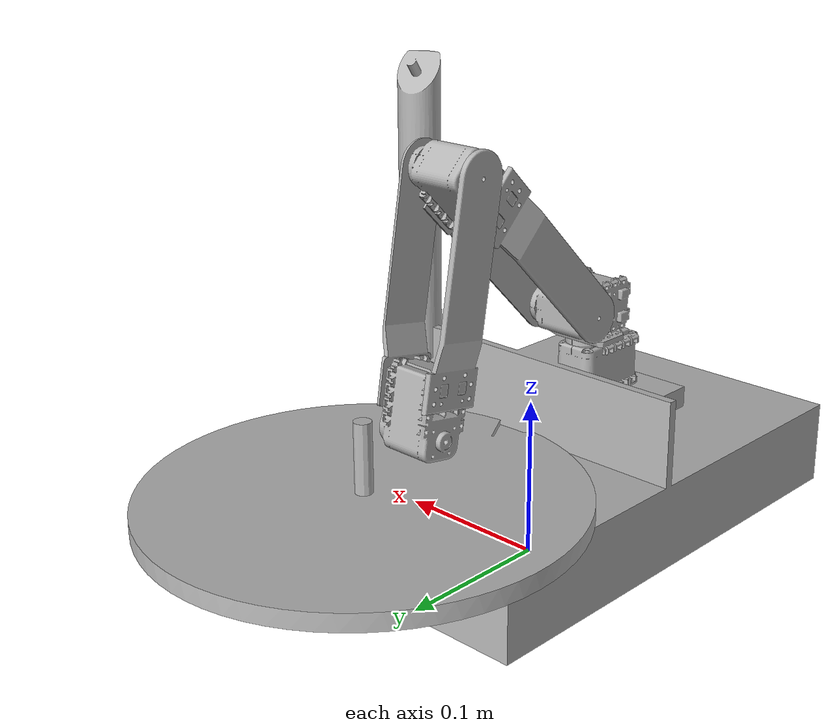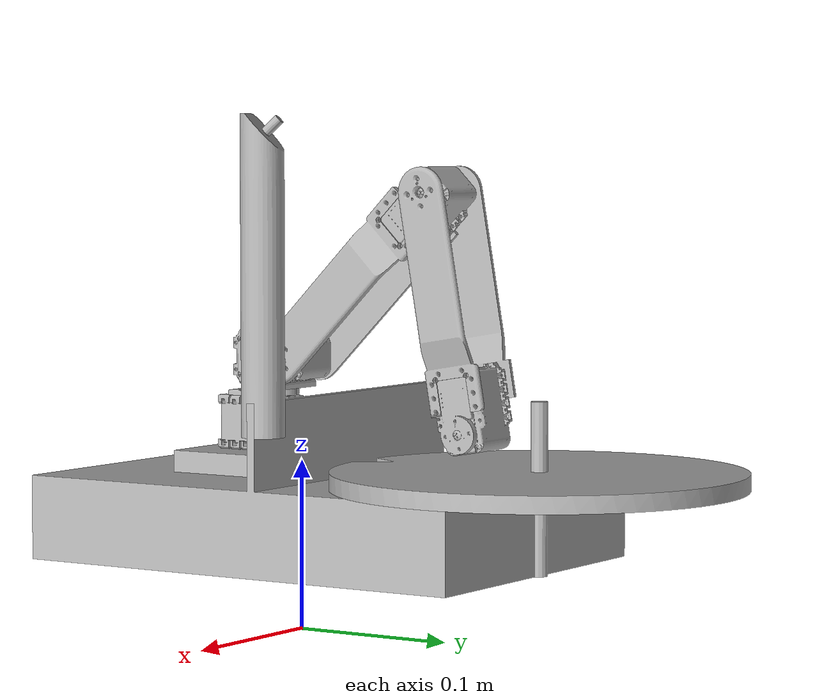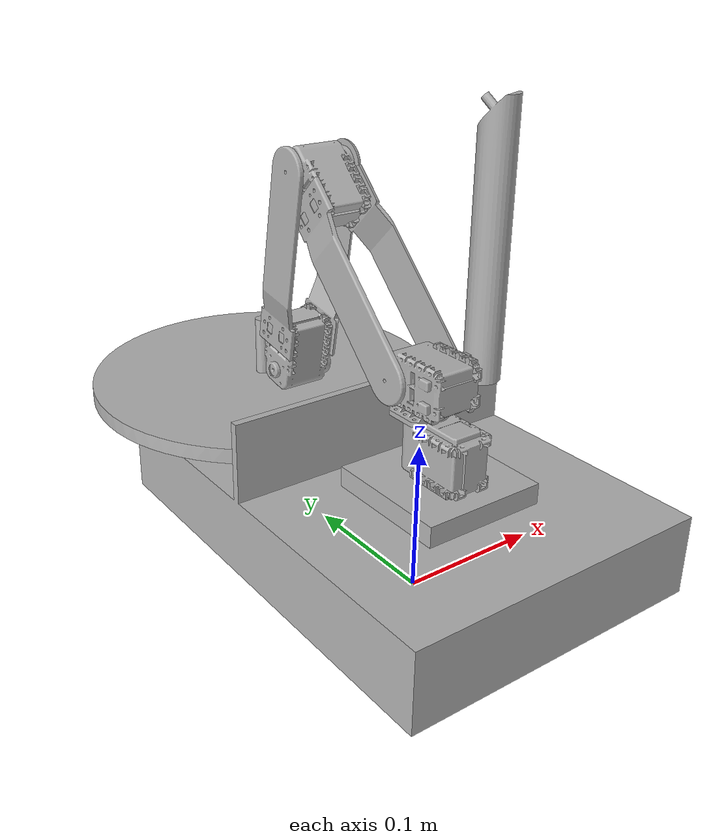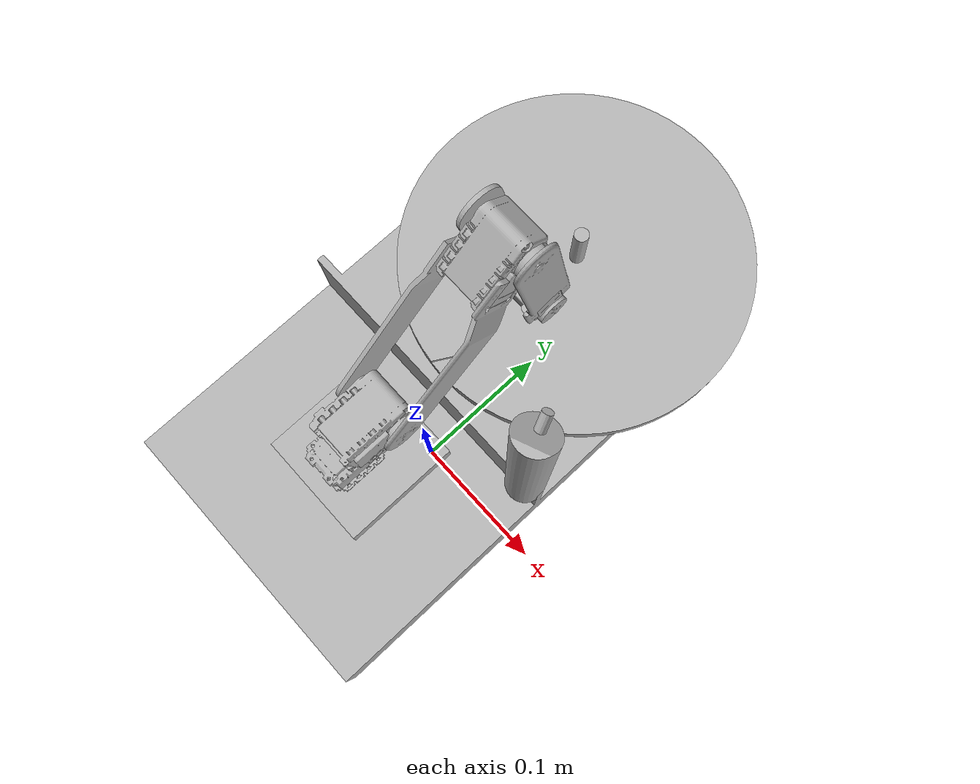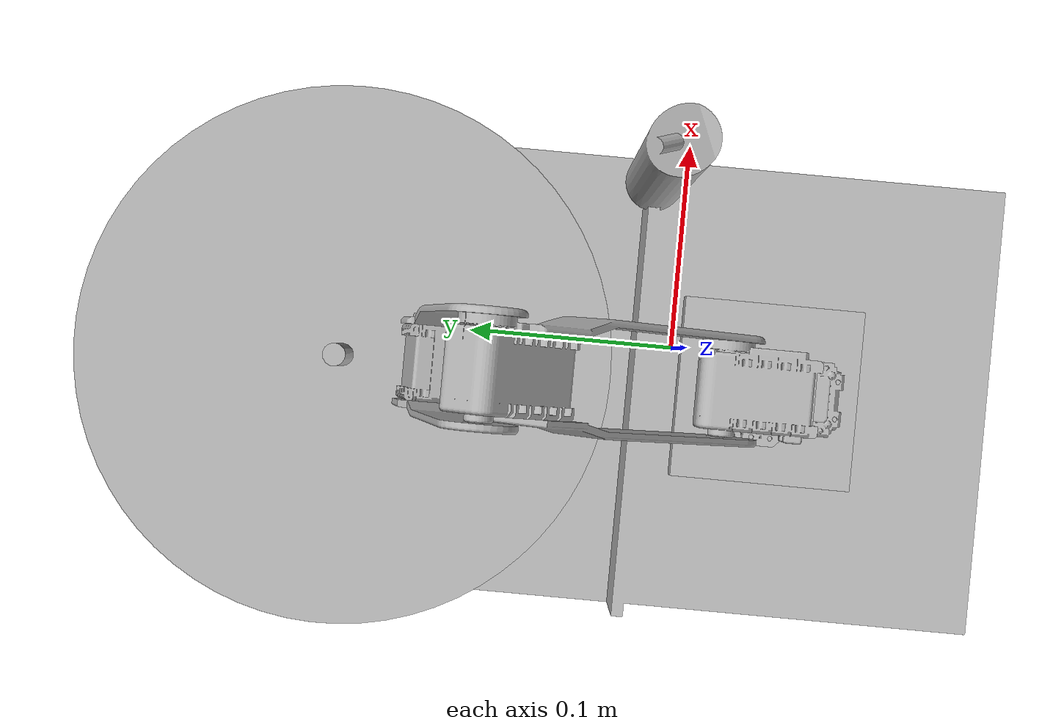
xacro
<?xml version="1.0" ?>
<robot name="stubbyV2" xmlns:xacro="http://www.ros.org/wiki/xacro">

<xacro:include filename="$(find stubbyV2_description)/urdf/materials.xacro" />
<xacro:include filename="$(find stubbyV2_description)/urdf/stubbyV2.trans" />
<xacro:include filename="$(find stubbyV2_description)/urdf/stubbyV2.gazebo" />
<link name="base_link">
  <inertial>
    <origin rpy="0 0 0" xyz="-0.017176095275408018 0.008329508235055823 0.06668562958812844"/>
    <mass value="2.9540424862254815"/>
    <inertia ixx="0.021201" ixy="0.0" ixz="-0.0" iyy="0.010579" iyz="-6.6e-05" izz="0.030285"/>
  </inertial>
  <visual>
    <origin rpy="0 0 0" xyz="0 0 0"/>
    <geometry>
      <mesh filename="package://stubbyV2_description/meshes/base_link.stl" scale="0.001 0.001 0.001"/>
    </geometry>
    <material name="silver"/>
  </visual>
  <collision>
    <origin rpy="0 0 0" xyz="0 0 0"/>
    <geometry>
      <mesh filename="package://stubbyV2_description/meshes/base_link.stl" scale="0.001 0.001 0.001"/>
    </geometry>
  </collision>
</link>

<link name="Component2_1">
  <inertial>
    <origin rpy="0 0 0" xyz="-3.213602704247101e-05 -1.2632577102433817e-09 0.0023374512159665684"/>
    <mass value="0.02417691266422109"/>
    <inertia ixx="1e-06" ixy="-0.0" ixz="-0.0" iyy="4e-06" iyz="-0.0" izz="5e-06"/>
  </inertial>
  <visual>
    <origin rpy="0 0 0" xyz="0.017176 0.027238 -0.140788"/>
    <geometry>
      <mesh filename="package://stubbyV2_description/meshes/Component2_1.stl" scale="0.001 0.001 0.001"/>
    </geometry>
    <material name="silver"/>
  </visual>
  <collision>
    <origin rpy="0 0 0" xyz="0.017176 0.027238 -0.140788"/>
    <geometry>
      <mesh filename="package://stubbyV2_description/meshes/Component2_1.stl" scale="0.001 0.001 0.001"/>
    </geometry>
  </collision>
</link>

<link name="Component3_1">
  <inertial>
    <origin rpy="0 0 0" xyz="-0.014941512536019635 0.001737720765778366 0.01353096997692041"/>
    <mass value="0.04244091097100989"/>
    <inertia ixx="1e-05" ixy="-0.0" ixz="-0.0" iyy="7e-06" iyz="0.0" izz="1.2e-05"/>
  </inertial>
  <visual>
    <origin rpy="0 0 0" xyz="0.001176 0.027238 -0.146288"/>
    <geometry>
      <mesh filename="package://stubbyV2_description/meshes/Component3_1.stl" scale="0.001 0.001 0.001"/>
    </geometry>
    <material name="silver"/>
  </visual>
  <collision>
    <origin rpy="0 0 0" xyz="0.001176 0.027238 -0.146288"/>
    <geometry>
      <mesh filename="package://stubbyV2_description/meshes/Component3_1.stl" scale="0.001 0.001 0.001"/>
    </geometry>
  </collision>
</link>

<link name="Component4_1">
  <inertial>
    <origin rpy="0 0 0" xyz="0.0005043653625993114 0.0542010520735141 8.771497575277287e-06"/>
    <mass value="0.0869111581488203"/>
    <inertia ixx="0.000129" ixy="4e-06" ixz="0.0" iyy="7e-06" iyz="-0.0" izz="0.000122"/>
  </inertial>
  <visual>
    <origin rpy="0 0 0" xyz="-0.003824 0.012738 -0.159788"/>
    <geometry>
      <mesh filename="package://stubbyV2_description/meshes/Component4_1.stl" scale="0.001 0.001 0.001"/>
    </geometry>
    <material name="silver"/>
  </visual>
  <collision>
    <origin rpy="0 0 0" xyz="-0.003824 0.012738 -0.159788"/>
    <geometry>
      <mesh filename="package://stubbyV2_description/meshes/Component4_1.stl" scale="0.001 0.001 0.001"/>
    </geometry>
  </collision>
</link>

<link name="Component5_1">
  <inertial>
    <origin rpy="0 0 0" xyz="-0.014941512536019191 0.01773772076577952 -0.013469030023073675"/>
    <mass value="0.04244091097100989"/>
    <inertia ixx="1e-05" ixy="-0.0" ixz="-0.0" iyy="7e-06" iyz="0.0" izz="1.2e-05"/>
  </inertial>
  <visual>
    <origin rpy="0 0 0" xyz="0.001176 -0.096762 -0.173288"/>
    <geometry>
      <mesh filename="package://stubbyV2_description/meshes/Component5_1.stl" scale="0.001 0.001 0.001"/>
    </geometry>
    <material name="silver"/>
  </visual>
  <collision>
    <origin rpy="0 0 0" xyz="0.001176 -0.096762 -0.173288"/>
    <geometry>
      <mesh filename="package://stubbyV2_description/meshes/Component5_1.stl" scale="0.001 0.001 0.001"/>
    </geometry>
  </collision>
</link>

<link name="Component6_1">
  <inertial>
    <origin rpy="0 0 0" xyz="0.00050436536259966 0.054201052073516026 8.77149758146678e-06"/>
    <mass value="0.0869111581488203"/>
    <inertia ixx="0.000129" ixy="4e-06" ixz="0.0" iyy="7e-06" iyz="-0.0" izz="0.000122"/>
  </inertial>
  <visual>
    <origin rpy="0 0 0" xyz="-0.003824 -0.127262 -0.159788"/>
    <geometry>
      <mesh filename="package://stubbyV2_description/meshes/Component6_1.stl" scale="0.001 0.001 0.001"/>
    </geometry>
    <material name="silver"/>
  </visual>
  <collision>
    <origin rpy="0 0 0" xyz="-0.003824 -0.127262 -0.159788"/>
    <geometry>
      <mesh filename="package://stubbyV2_description/meshes/Component6_1.stl" scale="0.001 0.001 0.001"/>
    </geometry>
  </collision>
</link>

<link name="Component9_1">
  <inertial>
    <origin rpy="0 0 0" xyz="-0.014941512536018366 0.0017377207657783278 -0.013469030023068429"/>
    <mass value="0.04244091097100989"/>
    <inertia ixx="1e-05" ixy="-0.0" ixz="-0.0" iyy="7e-06" iyz="0.0" izz="1.2e-05"/>
  </inertial>
  <visual>
    <origin rpy="0 0 0" xyz="0.001176 -0.252762 -0.173288"/>
    <geometry>
      <mesh filename="package://stubbyV2_description/meshes/Component9_1.stl" scale="0.001 0.001 0.001"/>
    </geometry>
    <material name="silver"/>
  </visual>
  <collision>
    <origin rpy="0 0 0" xyz="0.001176 -0.252762 -0.173288"/>
    <geometry>
      <mesh filename="package://stubbyV2_description/meshes/Component9_1.stl" scale="0.001 0.001 0.001"/>
    </geometry>
  </collision>
</link>

<link name="Component10_1">
  <inertial>
    <origin rpy="0 0 0" xyz="-2.7018171657629264e-06 4.189190058526138e-05 0.006457139430295453"/>
    <mass value="0.6475846843052765"/>
    <inertia ixx="0.000356" ixy="-0.0" ixz="0.0" iyy="0.000357" iyz="-0.0" izz="0.000695"/>
  </inertial>
  <visual>
    <origin rpy="0 0 0" xyz="0.017176 0.037238 -0.090788"/>
    <geometry>
      <mesh filename="package://stubbyV2_description/meshes/Component10_1.stl" scale="0.001 0.001 0.001"/>
    </geometry>
    <material name="silver"/>
  </visual>
  <collision>
    <origin rpy="0 0 0" xyz="0.017176 0.037238 -0.090788"/>
    <geometry>
      <mesh filename="package://stubbyV2_description/meshes/Component10_1.stl" scale="0.001 0.001 0.001"/>
    </geometry>
  </collision>
</link>

<link name="Component1_1">
  <inertial>
    <origin rpy="0 0 0" xyz="-3.118766107211568e-05 -0.012762279234219853 0.017058460330645522"/>
    <mass value="0.04244091097100989"/>
    <inertia ixx="1.2e-05" ixy="-0.0" ixz="0.0" iyy="7e-06" iyz="-0.0" izz="1e-05"/>
  </inertial>
  <visual>
    <origin rpy="0 0 0" xyz="0.017176 0.027238 -0.103788"/>
    <geometry>
      <mesh filename="package://stubbyV2_description/meshes/Component1_1.stl" scale="0.001 0.001 0.001"/>
    </geometry>
    <material name="silver"/>
  </visual>
  <collision>
    <origin rpy="0 0 0" xyz="0.017176 0.027238 -0.103788"/>
    <geometry>
      <mesh filename="package://stubbyV2_description/meshes/Component1_1.stl" scale="0.001 0.001 0.001"/>
    </geometry>
  </collision>
</link>

<link name="platform1_1">
  <inertial>
    <origin rpy="0 0 0" xyz="-9.527540957565694e-08 0.00020213084120049296 0.004993590637135198"/>
    <mass value="0.4507941946898463"/>
    <inertia ixx="0.001622" ixy="-0.0" ixz="-0.0" iyy="0.001632" iyz="-0.0" izz="0.003247"/>
  </inertial>
  <visual>
    <origin rpy="0 0 0" xyz="0.017176 -0.152762 -0.090788"/>
    <geometry>
      <mesh filename="package://stubbyV2_description/meshes/platform1_1.stl" scale="0.001 0.001 0.001"/>
    </geometry>
    <material name="silver"/>
  </visual>
  <collision>
    <origin rpy="0 0 0" xyz="0.017176 -0.152762 -0.090788"/>
    <geometry>
      <mesh filename="package://stubbyV2_description/meshes/platform1_1.stl" scale="0.001 0.001 0.001"/>
    </geometry>
  </collision>
</link>

<link name="susMount1_1">
  <inertial>
    <origin rpy="0 0 0" xyz="-0.0952469331263506 0.3003013551815146 0.09758296046799113"/>
    <mass value="0.6557743433400158"/>
    <inertia ixx="0.001646" ixy="-0.0" ixz="-4e-06" iyy="0.001645" iyz="1e-05" izz="5.2e-05"/>
  </inertial>
  <visual>
    <origin rpy="0 0 0" xyz="-0.165648 0.278026 -0.11325"/>
    <geometry>
      <mesh filename="package://stubbyV2_description/meshes/susMount1_1.stl" scale="0.001 0.001 0.001"/>
    </geometry>
    <material name="silver"/>
  </visual>
  <collision>
    <origin rpy="0 0 0" xyz="-0.165648 0.278026 -0.11325"/>
    <geometry>
      <mesh filename="package://stubbyV2_description/meshes/susMount1_1.stl" scale="0.001 0.001 0.001"/>
    </geometry>
  </collision>
</link>

<link name="Component7_1">
  <inertial>
    <origin rpy="0 0 0" xyz="-0.0038824317095737595 -0.061571163439828484 -0.013400530593801835"/>
    <mass value="0.09556389824775209"/>
    <inertia ixx="0.000154" ixy="-3e-06" ixz="-0.0" iyy="8e-06" iyz="-1e-06" izz="0.000147"/>
  </inertial>
  <visual>
    <origin rpy="0 0 0" xyz="0.033176 -0.104762 -0.173288"/>
    <geometry>
      <mesh filename="package://stubbyV2_description/meshes/Component7_1.stl" scale="0.001 0.001 0.001"/>
    </geometry>
    <material name="silver"/>
  </visual>
  <collision>
    <origin rpy="0 0 0" xyz="0.033176 -0.104762 -0.173288"/>
    <geometry>
      <mesh filename="package://stubbyV2_description/meshes/Component7_1.stl" scale="0.001 0.001 0.001"/>
    </geometry>
  </collision>
</link>

<link name="Component8_1">
  <inertial>
    <origin rpy="0 0 0" xyz="-0.003882431709572934 -0.061571163439830434 -0.013400530593796256"/>
    <mass value="0.09556389824775206"/>
    <inertia ixx="0.000154" ixy="-3e-06" ixz="-0.0" iyy="8e-06" iyz="-1e-06" izz="0.000147"/>
  </inertial>
  <visual>
    <origin rpy="0 0 0" xyz="0.033176 -0.244762 -0.173288"/>
    <geometry>
      <mesh filename="package://stubbyV2_description/meshes/Component8_1.stl" scale="0.001 0.001 0.001"/>
    </geometry>
    <material name="silver"/>
  </visual>
  <collision>
    <origin rpy="0 0 0" xyz="0.033176 -0.244762 -0.173288"/>
    <geometry>
      <mesh filename="package://stubbyV2_description/meshes/Component8_1.stl" scale="0.001 0.001 0.001"/>
    </geometry>
  </collision>
</link>

<joint name="Rev1" type="continuous">
  <origin rpy="0 0 0" xyz="0.0 0.0 0.037"/>
  <parent link="Component1_1"/>
  <child link="Component2_1"/>
  <axis xyz="-0.0 -0.0 1.0"/>
</joint>

<joint name="Rigid3" type="fixed">
  <origin rpy="0 0 0" xyz="0.016 0.0 0.0055"/>
  <parent link="Component2_1"/>
  <child link="Component3_1"/>
</joint>

<joint name="Rev2" type="continuous">
  <origin rpy="0 0 0" xyz="0.005 0.0145 0.0135"/>
  <parent link="Component3_1"/>
  <child link="Component4_1"/>
  <axis xyz="1.0 -0.0 -0.0"/>
</joint>

<joint name="Rigid5" type="fixed">
  <origin rpy="0 0 0" xyz="-0.005 0.1095 0.0135"/>
  <parent link="Component4_1"/>
  <child link="Component5_1"/>
</joint>

<joint name="Rev3" type="continuous">
  <origin rpy="0 0 0" xyz="0.005 0.0305 -0.0135"/>
  <parent link="Component5_1"/>
  <child link="Component6_1"/>
  <axis xyz="1.0 -0.0 -0.0"/>
</joint>

<joint name="Rigid12" type="fixed">
  <origin rpy="0 0 0" xyz="-0.005 0.1255 0.0135"/>
  <parent link="Component6_1"/>
  <child link="Component9_1"/>
</joint>

<joint name="Rigid13" type="fixed">
  <origin rpy="0 0 0" xyz="-0.017176 -0.037238 0.090788"/>
  <parent link="base_link"/>
  <child link="Component10_1"/>
</joint>

<joint name="Rigid14" type="fixed">
  <origin rpy="0 0 0" xyz="0.0 0.01 0.013"/>
  <parent link="Component10_1"/>
  <child link="Component1_1"/>
</joint>

<joint name="platformAngle" type="continuous">
  <origin rpy="0 0 0" xyz="-0.017176 0.152762 0.090788"/>
  <parent link="base_link"/>
  <child link="platform1_1"/>
  <axis xyz="-0.0 -0.0 1.0"/>
</joint>

<joint name="Rigid18" type="fixed">
  <origin rpy="0 0 0" xyz="0.165648 -0.278026 0.11325"/>
  <parent link="base_link"/>
  <child link="susMount1_1"/>
</joint>

<joint name="Rigid19" type="fixed">
  <origin rpy="0 0 0" xyz="-0.032 0.008 0.0"/>
  <parent link="Component5_1"/>
  <child link="Component7_1"/>
</joint>

<joint name="Rigid20" type="fixed">
  <origin rpy="0 0 0" xyz="-0.032 -0.008 0.0"/>
  <parent link="Component9_1"/>
  <child link="Component8_1"/>
</joint>

</robot>

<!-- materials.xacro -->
<robot name="stubbyV2" xmlns:xacro="http://www.ros.org/wiki/xacro" >

<material name="silver">
  <color rgba="0.700 0.700 0.700 1.000"/>
</material>

</robot>

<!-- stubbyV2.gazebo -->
<robot name="stubbyV2" xmlns:xacro="http://www.ros.org/wiki/xacro" >

<xacro:property name="body_color" value="Gazebo/Silver" />

<gazebo>
  <plugin filename="libgazebo_ros_control.so" name="control"/>
</gazebo>
<gazebo reference="base_link">
  <material>${body_color}</material>
  <mu1>0.2</mu1>
  <mu2>0.2</mu2>
  <selfCollide>true</selfCollide>
  <gravity>true</gravity>
</gazebo>

<gazebo reference="Component2_1">
  <material>${body_color}</material>
  <mu1>0.2</mu1>
  <mu2>0.2</mu2>
  <selfCollide>true</selfCollide>
</gazebo>

<gazebo reference="Component3_1">
  <material>${body_color}</material>
  <mu1>0.2</mu1>
  <mu2>0.2</mu2>
  <selfCollide>true</selfCollide>
</gazebo>

<gazebo reference="Component4_1">
  <material>${body_color}</material>
  <mu1>0.2</mu1>
  <mu2>0.2</mu2>
  <selfCollide>true</selfCollide>
</gazebo>

<gazebo reference="Component5_1">
  <material>${body_color}</material>
  <mu1>0.2</mu1>
  <mu2>0.2</mu2>
  <selfCollide>true</selfCollide>
</gazebo>

<gazebo reference="Component6_1">
  <material>${body_color}</material>
  <mu1>0.2</mu1>
  <mu2>0.2</mu2>
  <selfCollide>true</selfCollide>
</gazebo>

<gazebo reference="Component9_1">
  <material>${body_color}</material>
  <mu1>0.2</mu1>
  <mu2>0.2</mu2>
  <selfCollide>true</selfCollide>
</gazebo>

<gazebo reference="Component10_1">
  <material>${body_color}</material>
  <mu1>0.2</mu1>
  <mu2>0.2</mu2>
  <selfCollide>true</selfCollide>
</gazebo>

<gazebo reference="Component1_1">
  <material>${body_color}</material>
  <mu1>0.2</mu1>
  <mu2>0.2</mu2>
  <selfCollide>true</selfCollide>
</gazebo>

<gazebo reference="platform1_1">
  <material>${body_color}</material>
  <mu1>0.2</mu1>
  <mu2>0.2</mu2>
  <selfCollide>true</selfCollide>
</gazebo>

<gazebo reference="susMount1_1">
  <material>${body_color}</material>
  <mu1>0.2</mu1>
  <mu2>0.2</mu2>
  <selfCollide>true</selfCollide>
</gazebo>

<gazebo reference="Component7_1">
  <material>${body_color}</material>
  <mu1>0.2</mu1>
  <mu2>0.2</mu2>
  <selfCollide>true</selfCollide>
</gazebo>

<gazebo reference="Component8_1">
  <material>${body_color}</material>
  <mu1>0.2</mu1>
  <mu2>0.2</mu2>
  <selfCollide>true</selfCollide>
</gazebo>

</robot>
